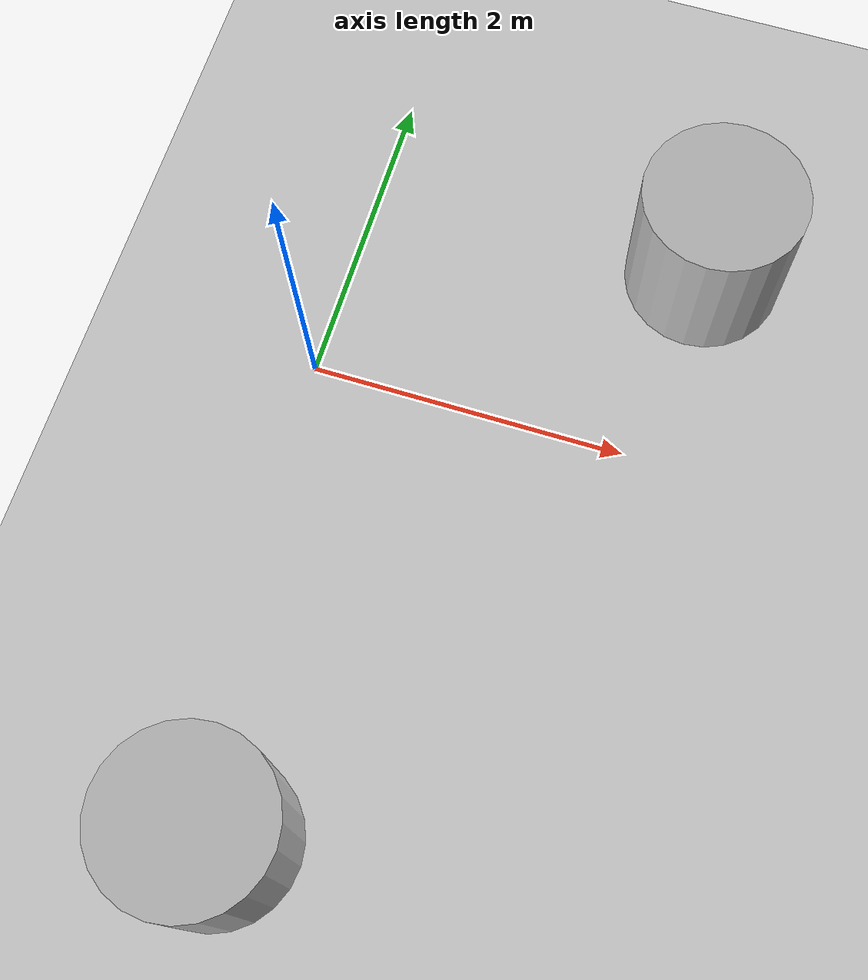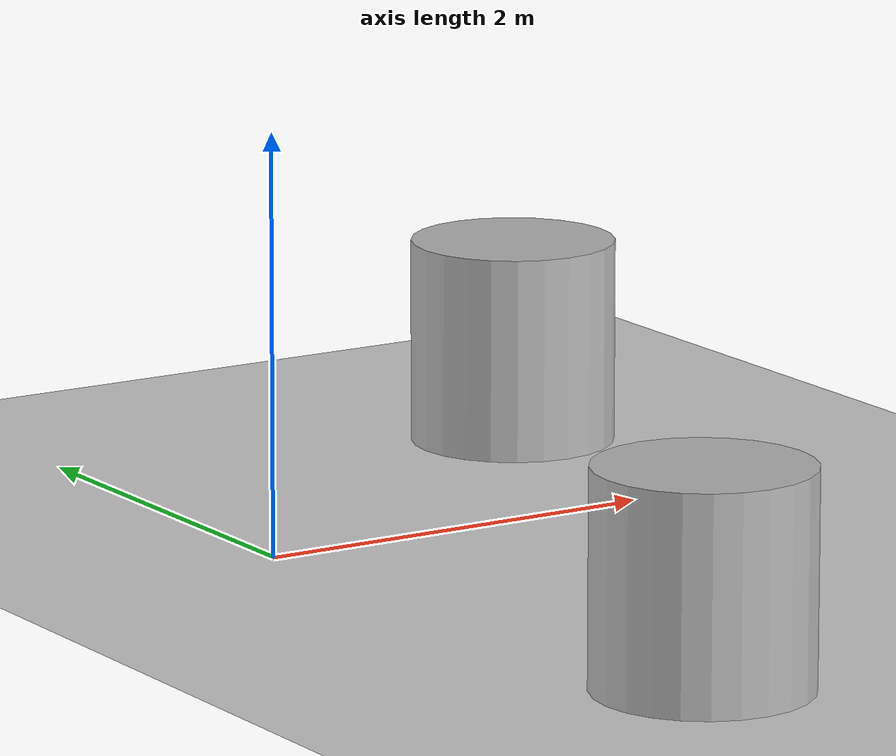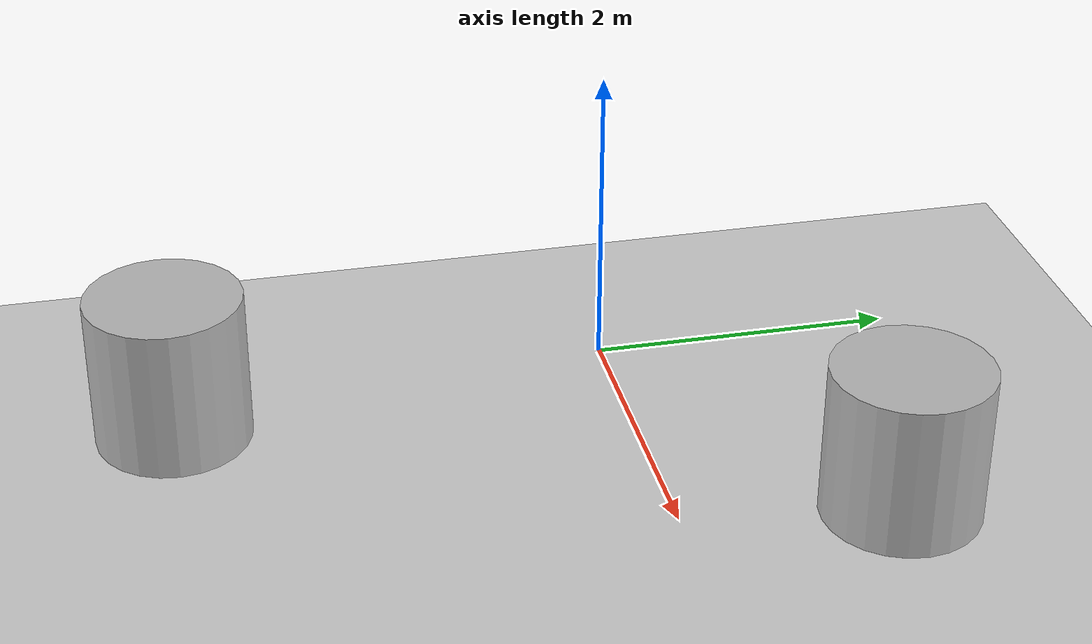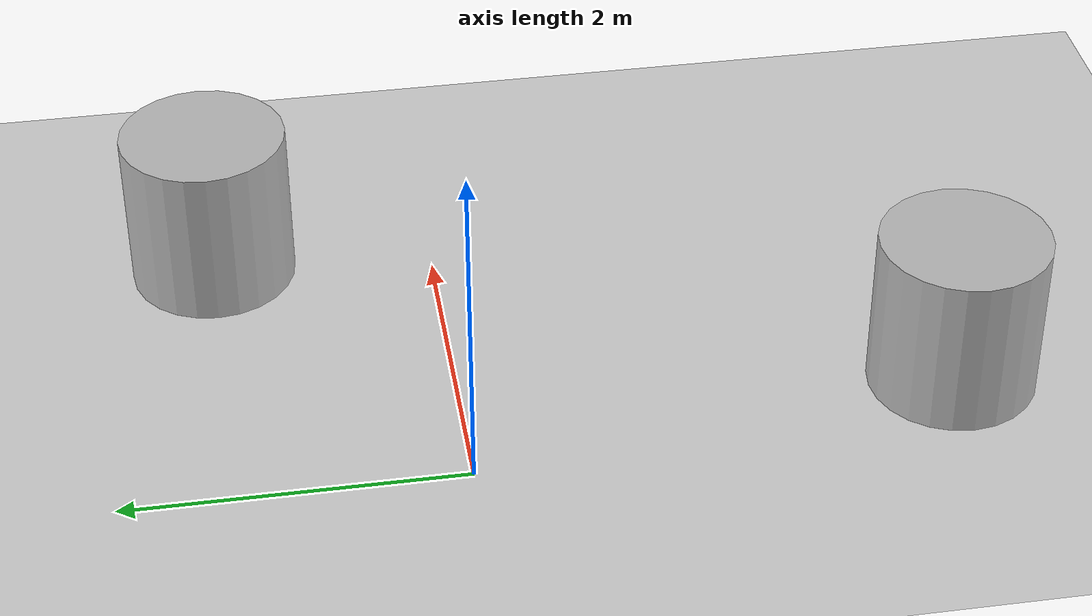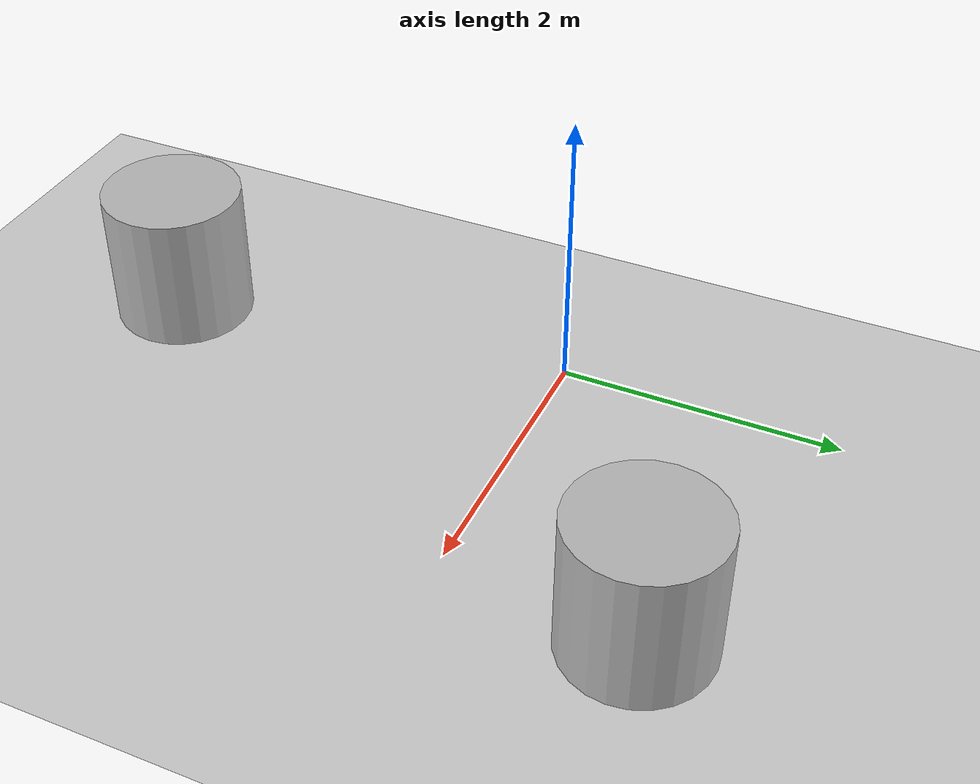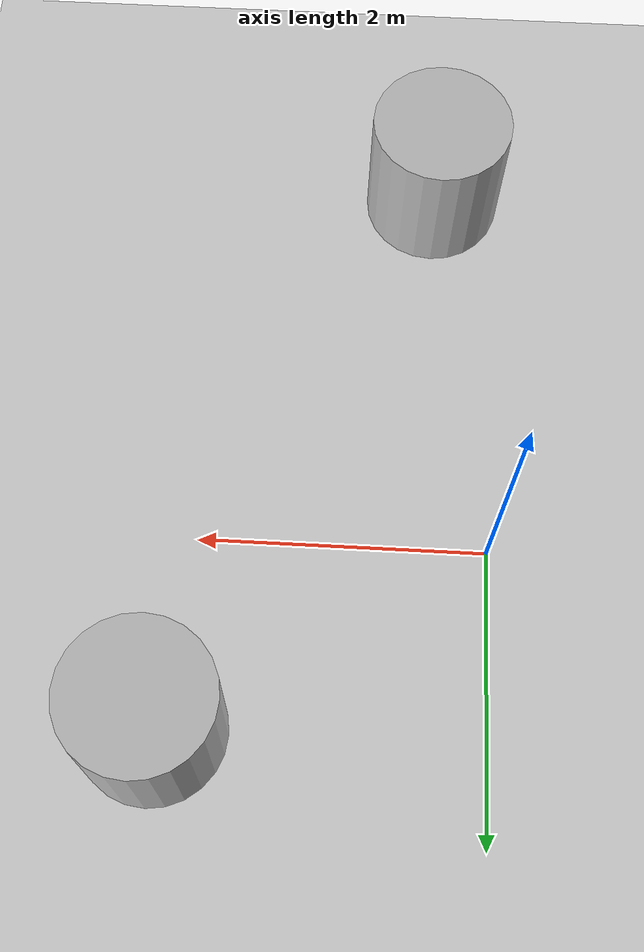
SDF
<?xml version="1.0"?>
<sdf version="1.10">
  <world name="test_world">

    <!-- Physics and system plugins -->
    <plugin name="gz::sim::systems::Physics" filename="gz-sim-physics-system" />
    <plugin name="gz::sim::systems::UserCommands" filename="gz-sim-user-commands-system" />
    <plugin name="gz::sim::systems::SceneBroadcaster" filename="gz-sim-scene-broadcaster-system" />
    <plugin name="gz::sim::systems::Contact" filename="gz-sim-contact-system" />
    <plugin name="gz::sim::systems::Sensors" filename="gz-sim-sensors-system">
      <render_engine>ogre2</render_engine>
    </plugin>

    <gravity>0 0 -9.8</gravity>
    <magnetic_field>5.56e-06 2.28e-05 -4.23e-05</magnetic_field>
    <atmosphere type="adiabatic" />

    <scene>
      <ambient>0.4 0.4 0.4 1</ambient>
      <background>0.7 0.7 0.7 1</background>
      <shadows>true</shadows>
    </scene>

    <!-- Ground plane -->
    <model name="ground_plane">
      <static>true</static>
      <link name="link">
        <collision name="collision">
          <geometry>
            <plane>
              <normal>0 0 1</normal>
              <size>100 100</size>
            </plane>
          </geometry>
        </collision>
        <visual name="visual">
          <geometry>
            <plane>
              <normal>0 0 1</normal>
              <size>100 100</size>
            </plane>
          </geometry>
        </visual>
      </link>
    </model>

    <!-- Obstacles -->
    <model name="cylinder">
      <pose>2.18 1.34 0.5 0 0 0</pose>
      <link name="cylinder_link">
        <collision name="collision">
          <geometry>
            <cylinder>
              <radius>0.5</radius>
              <length>1</length>
            </cylinder>
          </geometry>
        </collision>
        <visual name="visual">
          <geometry>
            <cylinder>
              <radius>0.5</radius>
              <length>1</length>
            </cylinder>
          </geometry>
        </visual>
      </link>
    </model>

    <model name="cylinder_0">
      <pose>0.42 -2.89 0.5 0 0 0</pose>
      <link name="cylinder_link">
        <collision name="collision">
          <geometry>
            <cylinder>
              <radius>0.5</radius>
              <length>1</length>
            </cylinder>
          </geometry>
        </collision>
        <visual name="visual">
          <geometry>
            <cylinder>
              <radius>0.5</radius>
              <length>1</length>
            </cylinder>
          </geometry>
        </visual>
      </link>
    </model>

    <!-- Sun light -->
    <light name="sun" type="directional">
      <pose>0 0 10 0 0 0</pose>
      <cast_shadows>true</cast_shadows>
      <intensity>1</intensity>
      <direction>-0.5 0.1 -0.9</direction>
      <diffuse>0.8 0.8 0.8 1</diffuse>
      <specular>0.2 0.2 0.2 1</specular>
      <attenuation>
        <range>1000</range>
        <linear>0.01</linear>
        <constant>0.9</constant>
        <quadratic>0.001</quadratic>
      </attenuation>
    </light>

  </world>
</sdf>
